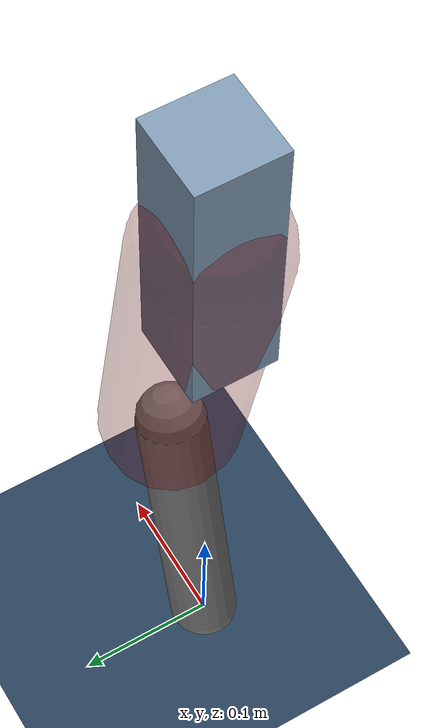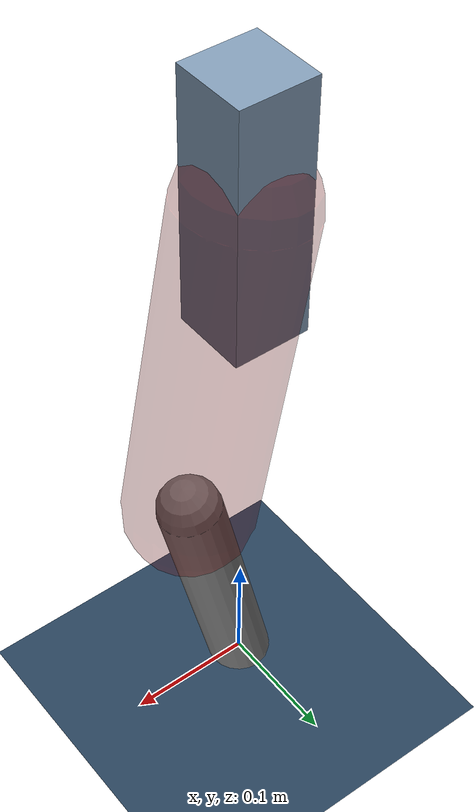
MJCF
<mujoco model="Hopper2D">
	<compiler inertiafromgeom="true" angle="radian" />
	<option timestep="0.001" integrator="implicit" cone="elliptic" solver="Newton" tolerance="1e-10" />

	<default>
		<geom contype="1" conaffinity="1" condim="3" friction="2 0.005 0.0001" solref="0.005 1" />
		<joint limited="true" damping="0.1" />
	</default>

	<asset>
		<texture name="skybox" type="skybox" builtin="gradient" rgb1=".4 .6 .8" rgb2="0 0 0" width="800" height="800" />
		<texture name="grid" type="2d" builtin="checker" rgb1=".1 .2 .3" rgb2=".2 .3 .4" width="300" height="300" mark="edge" markrgb=".2 .3 .4" />
		<material name="ground" texture="grid" texrepeat="1 1" texuniform="true" reflectance="0.1" />
		<material name="leg" rgba="0.5 0.6 0.7 1" />
	</asset>

	<worldbody>

		<geom name="floor" type="plane" size="5 5 0.25" material="ground" />

		<light directional="false" diffuse="0.8 0.8 0.8" specular="0.3 0.3 0.3" pos="0 0 2" dir="0 0 -1" />
		<light mode="targetbodycom" target="base" directional="false" diffuse="0.8 0.8 0.8" specular="0.3 0.3 0.3" pos="0 0 2" dir="0 0 -1" />

		<camera name="fixed" pos="0 -2 1" xyaxes="1 0 0 0 0 1" />
		<camera name="tracking" mode="trackcom" pos="0 -3 1" />

		<body name="root" pos="0 0 0.46065560113755166">
			<joint name="slide_x" type="slide" axis="1 0 0" range="-100 100" />
			<joint name="slide_z" type="slide" axis="0 0 1" range="0 10" />

			<body name="base" pos="0 0 0">
				<geom name="torso" type="box" size="0.03 0.03 0.1" mass="2.458" material="leg" />

				<body name="link1" pos="0 0 0" euler="0 1.38389266170355 0">
					<joint type="hinge" axis="0 -1 0" pos="0 0 0" name="hinge1" limited="true" range="-3.14 3.14" stiffness="0" damping="0.1" />
					<geom name="thigh" type="capsule" fromto="0 0 0 0.2583725659264605 0 0" size="0.05" rgba="0.5 0 0 0.3" mass="0.8781686714087973" />

					<body name="link2" pos="0.2583725659264605 0 0" euler="0 0.4150382727195207 0">
						<joint type="hinge" axis="0 -1 0" pos="0 0 0" name="hinge2" limited="true" range="-3.14 3.14" stiffness="0" damping="0.1" />
						<geom name="shank" type="capsule" fromto="0 0 0 0.21228303521109113 0 0" size="0.025" mass="0.4112264281688729" />

					</body>
				</body>
			</body>
		</body>
	</worldbody>

	<actuator>
		<motor name="torque1" joint="hinge1" ctrlrange="-72.16340567212947 72.16340567212947" ctrllimited="true" gear="1" />
		<motor name="torque2" joint="hinge2" ctrlrange="-107.88135618460723 107.88135618460723" ctrllimited="true" gear="1" />
	</actuator>
</mujoco>
